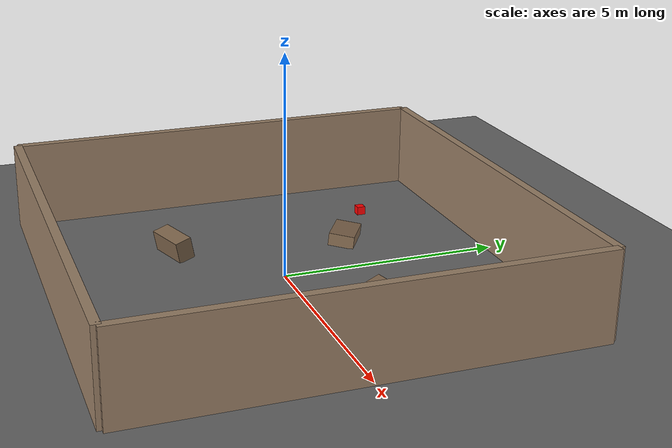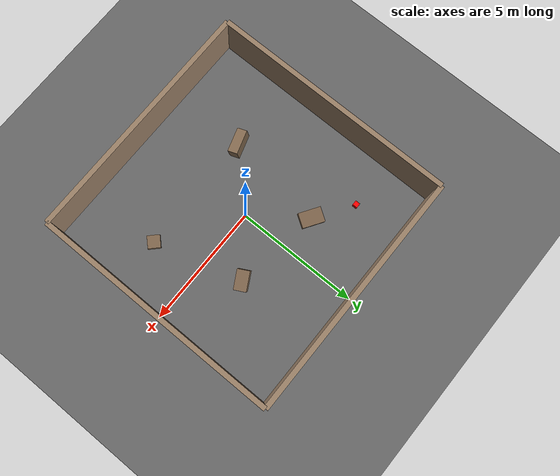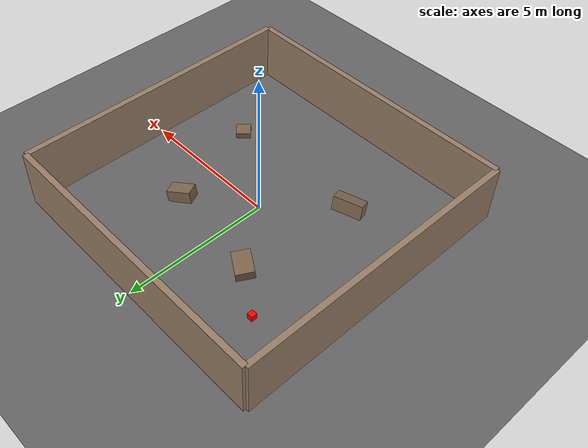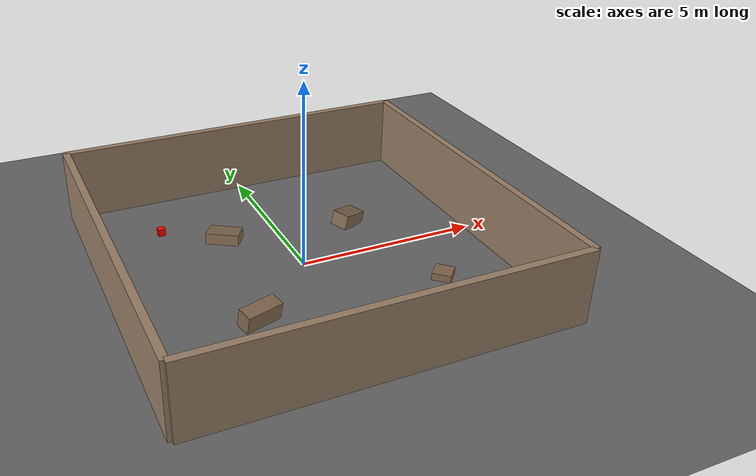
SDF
<?xml version="1.0"?>
<sdf version="1.6">
  <world name="destruction_site">

    <!-- Lighting -->
    <light name="sun" type="directional">
      <cast_shadows>true</cast_shadows>
      <pose>0 0 10 0 0 0</pose>
      <diffuse>0.6 0.6 0.6 1</diffuse>
      <specular>0.2 0.2 0.2 1</specular>
      <direction>-0.5 0.1 -0.9</direction>
    </light>

    <!-- Ground plane -->
    <model name="ground_plane">
      <static>true</static>
      <link name="link">
        <collision name="collision">
          <geometry><plane><normal>0 0 1</normal><size>20 20</size></plane></geometry>
          <surface><friction><ode><mu>100</mu><mu2>50</mu2></ode></friction></surface>
        </collision>
        <visual name="visual">
          <geometry><plane><normal>0 0 1</normal><size>20 20</size></plane></geometry>
          <material><ambient>0.4 0.4 0.4 1</ambient></material>
        </visual>
      </link>
    </model>

    <!-- Outer walls -->
    <model name="wall_north">
      <static>true</static>
      <pose>0 5 1 0 0 0</pose>
      <link name="link">
        <collision name="c"><geometry><box><size>10 0.2 2</size></box></geometry></collision>
        <visual name="v"><geometry><box><size>10 0.2 2</size></box></geometry>
          <material><ambient>0.6 0.5 0.4 1</ambient></material></visual>
      </link>
    </model>
    <model name="wall_south">
      <static>true</static>
      <pose>0 -5 1 0 0 0</pose>
      <link name="link">
        <collision name="c"><geometry><box><size>10 0.2 2</size></box></geometry></collision>
        <visual name="v"><geometry><box><size>10 0.2 2</size></box></geometry>
          <material><ambient>0.6 0.5 0.4 1</ambient></material></visual>
      </link>
    </model>
    <model name="wall_east">
      <static>true</static>
      <pose>5 0 1 0 0 0</pose>
      <link name="link">
        <collision name="c"><geometry><box><size>0.2 10 2</size></box></geometry></collision>
        <visual name="v"><geometry><box><size>0.2 10 2</size></box></geometry>
          <material><ambient>0.6 0.5 0.4 1</ambient></material></visual>
      </link>
    </model>
    <model name="wall_west">
      <static>true</static>
      <pose>-5 0 1 0 0 0</pose>
      <link name="link">
        <collision name="c"><geometry><box><size>0.2 10 2</size></box></geometry></collision>
        <visual name="v"><geometry><box><size>0.2 10 2</size></box></geometry>
          <material><ambient>0.6 0.5 0.4 1</ambient></material></visual>
      </link>
    </model>

    <!-- Rubble obstacles -->
    <model name="rubble_1">
      <static>true</static>
      <pose>2 1.5 0.2 0.1 0.2 0.5</pose>
      <link name="link">
        <collision name="c"><geometry><box><size>0.8 0.5 0.4</size></box></geometry></collision>
        <visual name="v"><geometry><box><size>0.8 0.5 0.4</size></box></geometry>
          <material><ambient>0.5 0.4 0.3 1</ambient></material></visual>
      </link>
    </model>
    <model name="rubble_2">
      <static>true</static>
      <pose>-1.5 2 0.15 0.0 0.1 1.0</pose>
      <link name="link">
        <collision name="c"><geometry><box><size>0.6 0.9 0.3</size></box></geometry></collision>
        <visual name="v"><geometry><box><size>0.6 0.9 0.3</size></box></geometry>
          <material><ambient>0.5 0.4 0.3 1</ambient></material></visual>
      </link>
    </model>
    <model name="rubble_3">
      <static>true</static>
      <pose>-2 -2 0.25 0.2 0.0 0.3</pose>
      <link name="link">
        <collision name="c"><geometry><box><size>1.0 0.4 0.5</size></box></geometry></collision>
        <visual name="v"><geometry><box><size>1.0 0.4 0.5</size></box></geometry>
          <material><ambient>0.5 0.4 0.3 1</ambient></material></visual>
      </link>
    </model>
    <model name="rubble_4">
      <static>true</static>
      <pose>3 -2 0.1 0.0 0.0 0.8</pose>
      <link name="link">
        <collision name="c"><geometry><box><size>0.5 0.5 0.2</size></box></geometry></collision>
        <visual name="v"><geometry><box><size>0.5 0.5 0.2</size></box></geometry>
          <material><ambient>0.5 0.4 0.3 1</ambient></material></visual>
      </link>
    </model>

    <!-- Red target object to find -->
    <model name="target_object">
      <static>true</static>
      <pose>-3 3 0.1 0 0 0</pose>
      <link name="link">
        <collision name="c"><geometry><box><size>0.2 0.2 0.2</size></box></geometry></collision>
        <visual name="v"><geometry><box><size>0.2 0.2 0.2</size></box></geometry>
          <material><ambient>1.0 0.0 0.0 1</ambient></material></visual>
      </link>
    </model>

  </world>
</sdf>
